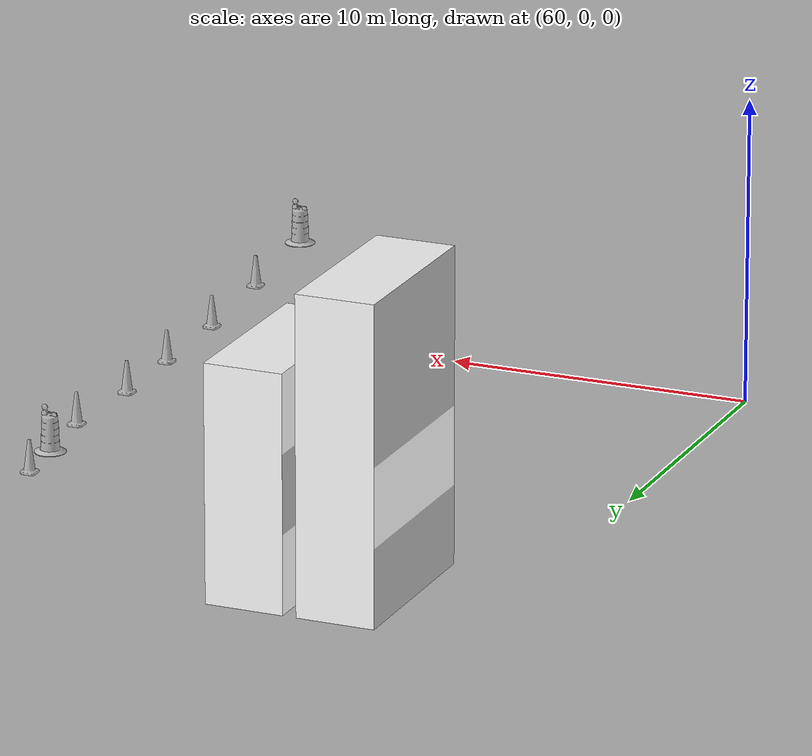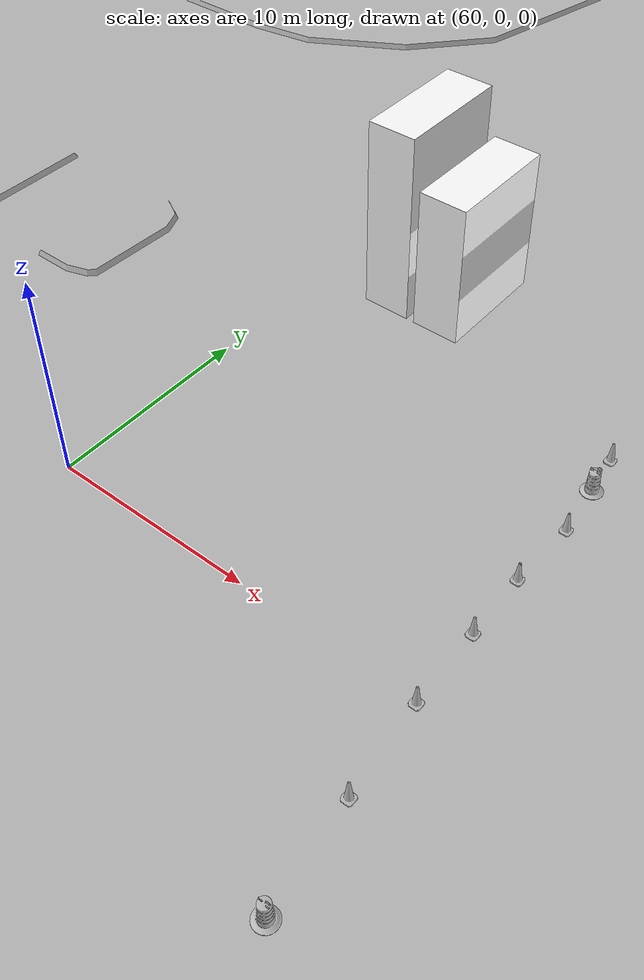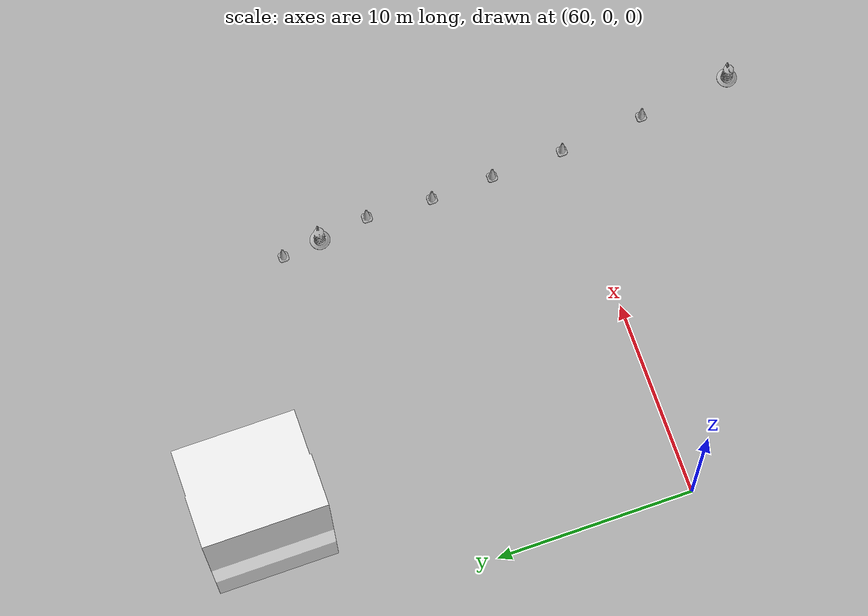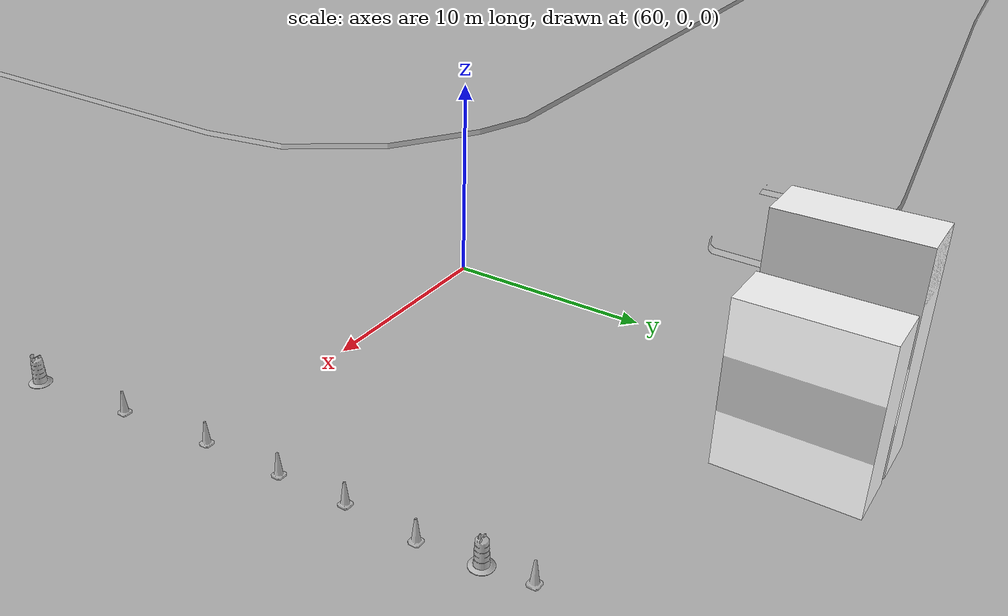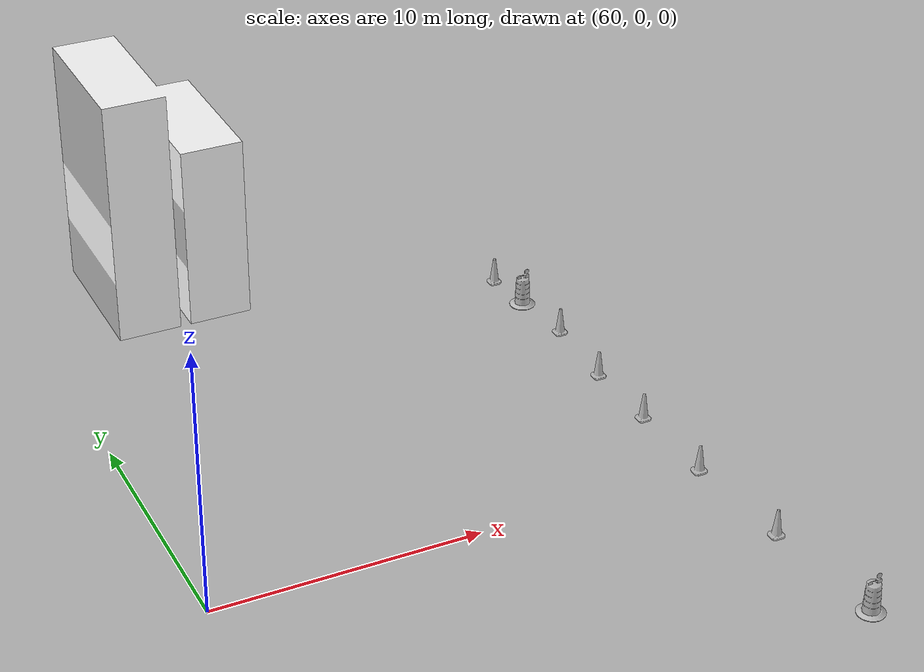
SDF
<sdf version="1.6">
 <world name="default">
  <light name="sun" type="directional">
   <pose>0 0 10 0 -0 0</pose>
   <diffuse>0.8 0.8 0.8 1</diffuse>
   <specular>0.2 0.2 0.2 1</specular>
   <attenuation>
    <range>1000</range>
    <constant>0.9</constant>
    <linear>0.01</linear>
    <quadratic>0.001</quadratic>
   </attenuation>
   <direction>-0.5 0.1 -0.9</direction>
  </light>
  <gravity>0 0 -9.8</gravity>
  <magnetic_field>6e-06 2.3e-05 -4.2e-05</magnetic_field>
  <atmosphere type="adiabatic"/>
  <physics name="default_physics" default="0" type="ode">
   <max_step_size>0.001</max_step_size>
   <real_time_factor>1</real_time_factor>
   <real_time_update_rate>1000</real_time_update_rate>
  </physics>
  <scene><ambient>0.4 0.4 0.4 1</ambient><background>0.7 0.7 0.7 1</background><shadows>1</shadows></scene>
  <spherical_coordinates>
   <surface_model>EARTH_WGS84</surface_model>
   <latitude_deg>0</latitude_deg>
   <longitude_deg>0</longitude_deg>
   <elevation>0</elevation>
   <heading_deg>0</heading_deg>
  </spherical_coordinates>
  <model name="mcity">
   <static>1</static>
   <link name="link">
    <collision name="collision">
     <geometry><mesh><scale>0.254 0.254 0.254</scale><uri>model://mcity/meshes/mcity.obj</uri></mesh></geometry>
    </collision>
    <visual name="visual">
     <geometry><mesh><scale>0.254 0.254 0.254</scale><uri>model://mcity/meshes/mcity.obj</uri></mesh></geometry>
    </visual>
   </link>
   <pose>32.2145 10.7398 0 0 -0 0</pose>
  </model>
  <model name="Construction Cone">
   <link name="link">
    <collision name="collision">
     <geometry>
      <mesh><scale>10 10 10</scale><uri>model://construction_cone/meshes/construction_cone.dae</uri></mesh>
     </geometry>
    </collision>
    <visual name="visual">
     <geometry>
      <mesh><scale>10 10 10</scale><uri>model://construction_cone/meshes/construction_cone.dae</uri></mesh>
     </geometry>
    </visual>
    <inertial>
     <inertia><ixx>1</ixx><ixy>0</ixy><ixz>0</ixz><iyy>1</iyy><iyz>0</iyz><izz>1</izz></inertia>
     <mass>1</mass>
    </inertial>
   </link>
   <pose>79.0359 -4.47206 -0 2e-06 -0 0</pose>
  </model>
  <model name="Construction Cone_0">
   <link name="link">
    <collision name="collision">
     <geometry>
      <mesh><scale>10 10 10</scale><uri>model://construction_cone/meshes/construction_cone.dae</uri></mesh>
     </geometry>
    </collision>
    <visual name="visual">
     <geometry>
      <mesh><scale>10 10 10</scale><uri>model://construction_cone/meshes/construction_cone.dae</uri></mesh>
     </geometry>
    </visual>
    <inertial>
     <inertia><ixx>1</ixx><ixy>0</ixy><ixz>0</ixz><iyy>1</iyy><iyz>0</iyz><izz>1</izz></inertia>
     <mass>1</mass>
    </inertial>
   </link>
   <pose>78.6189 -0.05754 0 -1e-06 1e-06 0</pose>
  </model>
  <model name="Construction Cone_1">
   <link name="link">
    <collision name="collision">
     <geometry>
      <mesh><scale>10 10 10</scale><uri>model://construction_cone/meshes/construction_cone.dae</uri></mesh>
     </geometry>
    </collision>
    <visual name="visual">
     <geometry>
      <mesh><scale>10 10 10</scale><uri>model://construction_cone/meshes/construction_cone.dae</uri></mesh>
     </geometry>
    </visual>
    <inertial>
     <inertia><ixx>1</ixx><ixy>0</ixy><ixz>0</ixz><iyy>1</iyy><iyz>0</iyz><izz>1</izz></inertia>
     <mass>1</mass>
    </inertial>
   </link>
   <pose>78.4892 3.7172 -1e-05 0 -0 0</pose>
  </model>
  <model name="Construction Cone_2">
   <link name="link">
    <collision name="collision">
     <geometry>
      <mesh><scale>10 10 10</scale><uri>model://construction_cone/meshes/construction_cone.dae</uri></mesh>
     </geometry>
    </collision>
    <visual name="visual">
     <geometry>
      <mesh><scale>10 10 10</scale><uri>model://construction_cone/meshes/construction_cone.dae</uri></mesh>
     </geometry>
    </visual>
    <inertial>
     <inertia><ixx>1</ixx><ixy>0</ixy><ixz>0</ixz><iyy>1</iyy><iyz>0</iyz><izz>1</izz></inertia>
     <mass>1</mass>
    </inertial>
   </link>
   <pose>78.3878 6.9536 -0 2e-06 -0 0</pose>
  </model>
  <model name="Construction Cone_3">
   <link name="link">
    <collision name="collision">
     <geometry>
      <mesh><scale>10 10 10</scale><uri>model://construction_cone/meshes/construction_cone.dae</uri></mesh>
     </geometry>
    </collision>
    <visual name="visual">
     <geometry>
      <mesh><scale>10 10 10</scale><uri>model://construction_cone/meshes/construction_cone.dae</uri></mesh>
     </geometry>
    </visual>
    <inertial>
     <inertia><ixx>1</ixx><ixy>0</ixy><ixz>0</ixz><iyy>1</iyy><iyz>0</iyz><izz>1</izz></inertia>
     <mass>1</mass>
    </inertial>
   </link>
   <pose>78.541 10.3439 1e-06 1e-06 -4e-06 0</pose>
  </model>
  <model name="Construction Cone_4">
   <link name="link">
    <collision name="collision">
     <geometry>
      <mesh><scale>10 10 10</scale><uri>model://construction_cone/meshes/construction_cone.dae</uri></mesh>
     </geometry>
    </collision>
    <visual name="visual">
     <geometry>
      <mesh><scale>10 10 10</scale><uri>model://construction_cone/meshes/construction_cone.dae</uri></mesh>
     </geometry>
    </visual>
    <inertial>
     <inertia><ixx>1</ixx><ixy>0</ixy><ixz>0</ixz><iyy>1</iyy><iyz>0</iyz><izz>1</izz></inertia>
     <mass>1</mass>
    </inertial>
   </link>
   <pose>77.9619 14.929 0 -1e-06 0 0</pose>
  </model>
  <model name="Construction Barrel">
   <link name="link">
    <inertial>
     <pose>0 0 0.4 0 -0 0</pose>
     <mass>500</mass>
     <inertia><ixx>51.2096</ixx><iyy>51.2096</iyy><izz>25</izz><ixy>0</ixy><ixz>0</ixz><iyz>0</iyz></inertia>
    </inertial>
    <collision name="collision">
     <geometry><mesh><uri>model://construction_barrel/meshes/construction_barrel.dae</uri></mesh></geometry>
    </collision>
    <visual name="visual">
     <geometry><mesh><uri>model://construction_barrel/meshes/construction_barrel.dae</uri></mesh></geometry>
    </visual>
   </link>
   <pose>78.2157 12.9316 -7e-06 -5e-06 -2e-06 2.1e-05</pose>
  </model>
  <model name="Construction Barrel_0">
   <link name="link">
    <inertial>
     <pose>0 0 0.4 0 -0 0</pose>
     <mass>500</mass>
     <inertia><ixx>51.2096</ixx><iyy>51.2096</iyy><izz>25</izz><ixy>0</ixy><ixz>0</ixz><iyz>0</iyz></inertia>
    </inertial>
    <collision name="collision">
     <geometry><mesh><uri>model://construction_barrel/meshes/construction_barrel.dae</uri></mesh></geometry>
    </collision>
    <visual name="visual">
     <geometry><mesh><uri>model://construction_barrel/meshes/construction_barrel.dae</uri></mesh></geometry>
    </visual>
   </link>
   <pose>79.5757 -9.31653 -1e-06 2e-06 -1e-06 0.000345</pose>
  </model>
  <model name="container-multi-stack">
   <static>1</static>
   <link name="chassis">
    <collision name="collision">
     <geometry><mesh><uri>model://container-multi-stack/container-multi-stack.dae</uri></mesh></geometry>
    </collision>
    <visual name="visual">
     <geometry><mesh><uri>model://container-multi-stack/container-multi-stack.dae</uri></mesh></geometry>
    </visual>
   </link>
   <pose>62.8142 16.0403 0 0 -0 0</pose>
  </model>
 </world>
</sdf>
